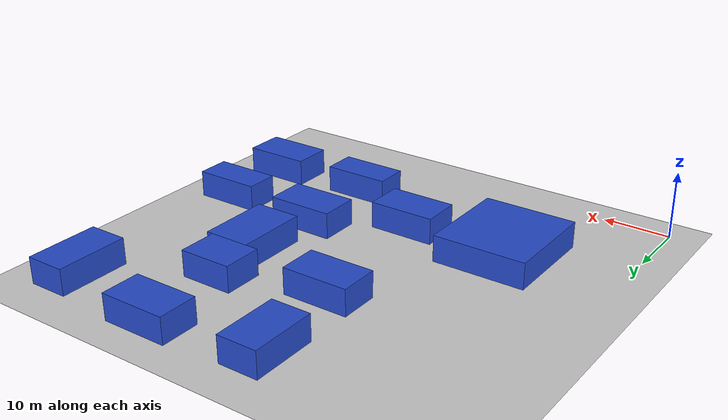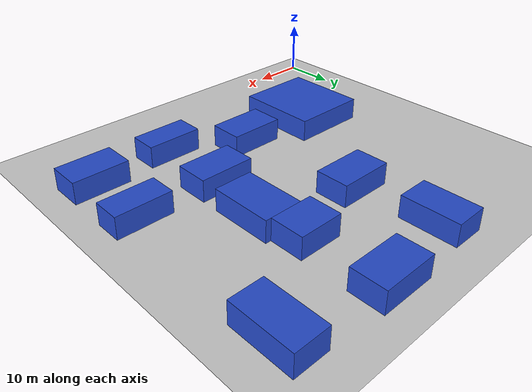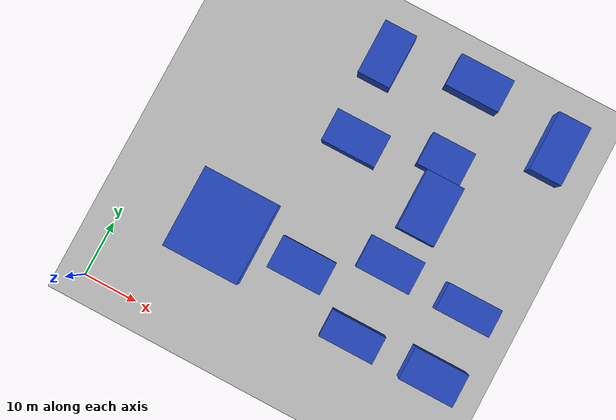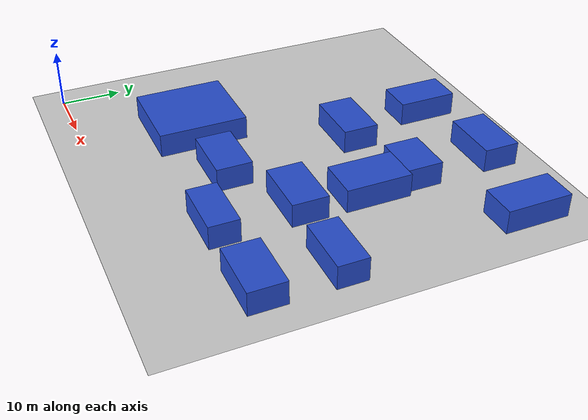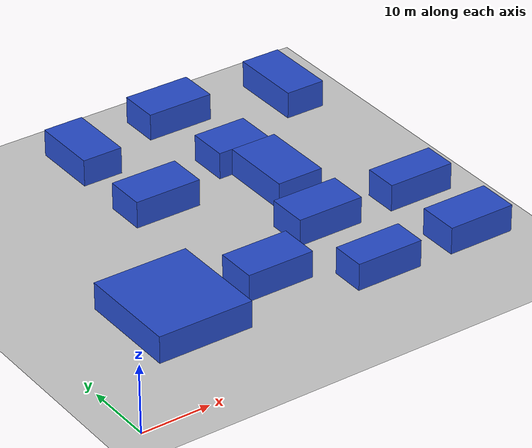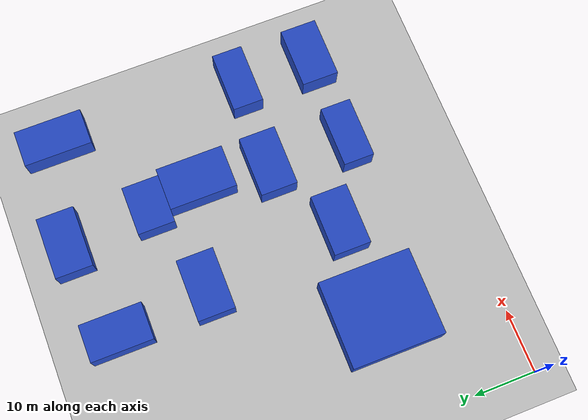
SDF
<?xml version="1.0" ?>
<sdf version="1.5">
  <world name="default">
    <!-- A global light source -->
    <include>
      <uri>model://sun</uri>
    </include>
    <!-- A ground plane -->
    <include>
      <uri>model://ground_plane</uri>
    </include>

    <physics name='default_physics' default='0' type='ode'>
      <gravity>0 0 -9.8066</gravity>
      <ode>
        <solver>
          <type>quick</type>
          <iters>10</iters>
          <sor>1.3</sor>
          <use_dynamic_moi_rescaling>0</use_dynamic_moi_rescaling>
        </solver>
        <constraints>
          <cfm>0</cfm>
          <erp>0.2</erp>
          <contact_max_correcting_vel>100</contact_max_correcting_vel>
          <contact_surface_layer>0.001</contact_surface_layer>
        </constraints>
      </ode>
      <max_step_size>0.004</max_step_size>
      <real_time_factor>1</real_time_factor>
      <real_time_update_rate>250</real_time_update_rate>
      <magnetic_field>6.0e-6 2.3e-5 -4.2e-5</magnetic_field>
    </physics>

    <spherical_coordinates>
      <surface_model>EARTH_WGS84</surface_model>
      <latitude_deg>40.769052</latitude_deg>
      <longitude_deg>-111.848071</longitude_deg>
      <elevation>1940</elevation>
    </spherical_coordinates>
    <!-- Boxes -->
    <model name='b0'>
     <static>1</static>
      <pose frame=''>17.0 18.5 2.0 0 -0 0</pose>
      <link name='link'>
        <inertial>
          <mass>1</mass>
          <inertia>
            <ixx>0.166667</ixx>
            <ixy>0</ixy>
            <ixz>0</ixz>
            <iyy>0.166667</iyy>
            <iyz>0</iyz>
            <izz>0.166667</izz>
          </inertia>
        </inertial>
        <collision name='collision'>
          <geometry>
            <box>
              <size>14 15 4</size>
            </box>
          </geometry>
          <max_contacts>10</max_contacts>
          <surface>
            <contact>
              <ode/>
            </contact>
            <bounce/>
            <friction>
              <torsional>
                <ode/>
              </torsional>
              <ode/>
            </friction>
          </surface>
        </collision>
        <visual name='visual'>
          <geometry>
            <box>
              <size>14 15 4</size>
            </box>
          </geometry>
          <material>
            <script>
              <name>Gazebo/Blue</name>
              <uri>file://media/materials/scripts/gazebo.material</uri>
            </script>
          </material>
        </visual>
        <self_collide>0</self_collide>
        <kinematic>0</kinematic>
        <gravity>0</gravity>
      </link>
    </model>

    <model name='b1'>
     <static>1</static>
      <pose frame=''>32.0 19.0 2.0 0 -0 0</pose>
      <link name='link'>
        <inertial>
          <mass>1</mass>
          <inertia>
            <ixx>0.166667</ixx>
            <ixy>0</ixy>
            <ixz>0</ixz>
            <iyy>0.166667</iyy>
            <iyz>0</iyz>
            <izz>0.166667</izz>
          </inertia>
        </inertial>
        <collision name='collision'>
          <geometry>
            <box>
              <size>10 6 4</size>
            </box>
          </geometry>
          <max_contacts>10</max_contacts>
          <surface>
            <contact>
              <ode/>
            </contact>
            <bounce/>
            <friction>
              <torsional>
                <ode/>
              </torsional>
              <ode/>
            </friction>
          </surface>
        </collision>
        <visual name='visual'>
          <geometry>
            <box>
              <size>10 6 4</size>
            </box>
          </geometry>
          <material>
            <script>
              <name>Gazebo/Blue</name>
              <uri>file://media/materials/scripts/gazebo.material</uri>
            </script>
          </material>
        </visual>
        <self_collide>0</self_collide>
        <kinematic>0</kinematic>
        <gravity>0</gravity>
      </link>
    </model>

    <model name='b2'>
     <static>1</static>
      <pose frame=''>30.0 42.0 2.0 0 -0 0</pose>
      <link name='link'>
        <inertial>
          <mass>1</mass>
          <inertia>
            <ixx>0.166667</ixx>
            <ixy>0</ixy>
            <ixz>0</ixz>
            <iyy>0.166667</iyy>
            <iyz>0</iyz>
            <izz>0.166667</izz>
          </inertia>
        </inertial>
        <collision name='collision'>
          <geometry>
            <box>
              <size>10 6 4</size>
            </box>
          </geometry>
          <max_contacts>10</max_contacts>
          <surface>
            <contact>
              <ode/>
            </contact>
            <bounce/>
            <friction>
              <torsional>
                <ode/>
              </torsional>
              <ode/>
            </friction>
          </surface>
        </collision>
        <visual name='visual'>
          <geometry>
            <box>
              <size>10 6 4</size>
            </box>
          </geometry>
          <material>
            <script>
              <name>Gazebo/Blue</name>
              <uri>file://media/materials/scripts/gazebo.material</uri>
            </script>
          </material>
        </visual>
        <self_collide>0</self_collide>
        <kinematic>0</kinematic>
        <gravity>0</gravity>
      </link>
    </model>

    <model name='b3'>
     <static>1</static>
      <pose frame=''>28.0 57.0 2.0 0 -0 0</pose>
      <link name='link'>
        <inertial>
          <mass>1</mass>
          <inertia>
            <ixx>0.166667</ixx>
            <ixy>0</ixy>
            <ixz>0</ixz>
            <iyy>0.166667</iyy>
            <iyz>0</iyz>
            <izz>0.166667</izz>
          </inertia>
        </inertial>
        <collision name='collision'>
          <geometry>
            <box>
              <size>6 10 4</size>
            </box>
          </geometry>
          <max_contacts>10</max_contacts>
          <surface>
            <contact>
              <ode/>
            </contact>
            <bounce/>
            <friction>
              <torsional>
                <ode/>
              </torsional>
              <ode/>
            </friction>
          </surface>
        </collision>
        <visual name='visual'>
          <geometry>
            <box>
              <size>6 10 4</size>
            </box>
          </geometry>
          <material>
            <script>
              <name>Gazebo/Blue</name>
              <uri>file://media/materials/scripts/gazebo.material</uri>
            </script>
          </material>
        </visual>
        <self_collide>0</self_collide>
        <kinematic>0</kinematic>
        <gravity>0</gravity>
      </link>
    </model>

    <model name='b4'>
     <static>1</static>
      <pose frame=''>45.0 12.5 2.0 0 -0 0</pose>
      <link name='link'>
        <inertial>
          <mass>1</mass>
          <inertia>
            <ixx>0.166667</ixx>
            <ixy>0</ixy>
            <ixz>0</ixz>
            <iyy>0.166667</iyy>
            <iyz>0</iyz>
            <izz>0.166667</izz>
          </inertia>
        </inertial>
        <collision name='collision'>
          <geometry>
            <box>
              <size>10 5 4</size>
            </box>
          </geometry>
          <max_contacts>10</max_contacts>
          <surface>
            <contact>
              <ode/>
            </contact>
            <bounce/>
            <friction>
              <torsional>
                <ode/>
              </torsional>
              <ode/>
            </friction>
          </surface>
        </collision>
        <visual name='visual'>
          <geometry>
            <box>
              <size>10 5 4</size>
            </box>
          </geometry>
          <material>
            <script>
              <name>Gazebo/Blue</name>
              <uri>file://media/materials/scripts/gazebo.material</uri>
            </script>
          </material>
        </visual>
        <self_collide>0</self_collide>
        <kinematic>0</kinematic>
        <gravity>0</gravity>
      </link>
    </model>

    <model name='b5'>
     <static>1</static>
      <pose frame=''>45.0 26.0 2.0 0 -0 0</pose>
      <link name='link'>
        <inertial>
          <mass>1</mass>
          <inertia>
            <ixx>0.166667</ixx>
            <ixy>0</ixy>
            <ixz>0</ixz>
            <iyy>0.166667</iyy>
            <iyz>0</iyz>
            <izz>0.166667</izz>
          </inertia>
        </inertial>
        <collision name='collision'>
          <geometry>
            <box>
              <size>10 6 4</size>
            </box>
          </geometry>
          <max_contacts>10</max_contacts>
          <surface>
            <contact>
              <ode/>
            </contact>
            <bounce/>
            <friction>
              <torsional>
                <ode/>
              </torsional>
              <ode/>
            </friction>
          </surface>
        </collision>
        <visual name='visual'>
          <geometry>
            <box>
              <size>10 6 4</size>
            </box>
          </geometry>
          <material>
            <script>
              <name>Gazebo/Blue</name>
              <uri>file://media/materials/scripts/gazebo.material</uri>
            </script>
          </material>
        </visual>
        <self_collide>0</self_collide>
        <kinematic>0</kinematic>
        <gravity>0</gravity>
      </link>
    </model>

    <model name='b6'>
     <static>1</static>
      <pose frame=''>46.5 37.5 2.0 0 -0 0</pose>
      <link name='link'>
        <inertial>
          <mass>1</mass>
          <inertia>
            <ixx>0.166667</ixx>
            <ixy>0</ixy>
            <ixz>0</ixz>
            <iyy>0.166667</iyy>
            <iyz>0</iyz>
            <izz>0.166667</izz>
          </inertia>
        </inertial>
        <collision name='collision'>
          <geometry>
            <box>
              <size>7 11 4</size>
            </box>
          </geometry>
          <max_contacts>10</max_contacts>
          <surface>
            <contact>
              <ode/>
            </contact>
            <bounce/>
            <friction>
              <torsional>
                <ode/>
              </torsional>
              <ode/>
            </friction>
          </surface>
        </collision>
        <visual name='visual'>
          <geometry>
            <box>
              <size>7 11 4</size>
            </box>
          </geometry>
          <material>
            <script>
              <name>Gazebo/Blue</name>
              <uri>file://media/materials/scripts/gazebo.material</uri>
            </script>
          </material>
        </visual>
        <self_collide>0</self_collide>
        <kinematic>0</kinematic>
        <gravity>0</gravity>
      </link>
    </model>

    <model name='b7'>
     <static>1</static>
      <pose frame=''>45.0 46.0 2.0 0 -0 0</pose>
      <link name='link'>
        <inertial>
          <mass>1</mass>
          <inertia>
            <ixx>0.166667</ixx>
            <ixy>0</ixy>
            <ixz>0</ixz>
            <iyy>0.166667</iyy>
            <iyz>0</iyz>
            <izz>0.166667</izz>
          </inertia>
        </inertial>
        <collision name='collision'>
          <geometry>
            <box>
              <size>8 6 4</size>
            </box>
          </geometry>
          <max_contacts>10</max_contacts>
          <surface>
            <contact>
              <ode/>
            </contact>
            <bounce/>
            <friction>
              <torsional>
                <ode/>
              </torsional>
              <ode/>
            </friction>
          </surface>
        </collision>
        <visual name='visual'>
          <geometry>
            <box>
              <size>8 6 4</size>
            </box>
          </geometry>
          <material>
            <script>
              <name>Gazebo/Blue</name>
              <uri>file://media/materials/scripts/gazebo.material</uri>
            </script>
          </material>
        </visual>
        <self_collide>0</self_collide>
        <kinematic>0</kinematic>
        <gravity>0</gravity>
      </link>
    </model>

    <model name='b8'>
     <static>1</static>
      <pose frame=''>44.0 60.0 2.0 0 -0 0</pose>
      <link name='link'>
        <inertial>
          <mass>1</mass>
          <inertia>
            <ixx>0.166667</ixx>
            <ixy>0</ixy>
            <ixz>0</ixz>
            <iyy>0.166667</iyy>
            <iyz>0</iyz>
            <izz>0.166667</izz>
          </inertia>
        </inertial>
        <collision name='collision'>
          <geometry>
            <box>
              <size>10 6 4</size>
            </box>
          </geometry>
          <max_contacts>10</max_contacts>
          <surface>
            <contact>
              <ode/>
            </contact>
            <bounce/>
            <friction>
              <torsional>
                <ode/>
              </torsional>
              <ode/>
            </friction>
          </surface>
        </collision>
        <visual name='visual'>
          <geometry>
            <box>
              <size>10 6 4</size>
            </box>
          </geometry>
          <material>
            <script>
              <name>Gazebo/Blue</name>
              <uri>file://media/materials/scripts/gazebo.material</uri>
            </script>
          </material>
        </visual>
        <self_collide>0</self_collide>
        <kinematic>0</kinematic>
        <gravity>0</gravity>
      </link>
    </model>

    <model name='b9'>
     <static>1</static>
      <pose frame=''>60.0 13.0 2.0 0 -0 0</pose>
      <link name='link'>
        <inertial>
          <mass>1</mass>
          <inertia>
            <ixx>0.166667</ixx>
            <ixy>0</ixy>
            <ixz>0</ixz>
            <iyy>0.166667</iyy>
            <iyz>0</iyz>
            <izz>0.166667</izz>
          </inertia>
        </inertial>
        <collision name='collision'>
          <geometry>
            <box>
              <size>10 6 4</size>
            </box>
          </geometry>
          <max_contacts>10</max_contacts>
          <surface>
            <contact>
              <ode/>
            </contact>
            <bounce/>
            <friction>
              <torsional>
                <ode/>
              </torsional>
              <ode/>
            </friction>
          </surface>
        </collision>
        <visual name='visual'>
          <geometry>
            <box>
              <size>10 6 4</size>
            </box>
          </geometry>
          <material>
            <script>
              <name>Gazebo/Blue</name>
              <uri>file://media/materials/scripts/gazebo.material</uri>
            </script>
          </material>
        </visual>
        <self_collide>0</self_collide>
        <kinematic>0</kinematic>
        <gravity>0</gravity>
      </link>
    </model>

    <model name='b10'>
     <static>1</static>
      <pose frame=''>60.0 25.5 2.0 0 -0 0</pose>
      <link name='link'>
        <inertial>
          <mass>1</mass>
          <inertia>
            <ixx>0.166667</ixx>
            <ixy>0</ixy>
            <ixz>0</ixz>
            <iyy>0.166667</iyy>
            <iyz>0</iyz>
            <izz>0.166667</izz>
          </inertia>
        </inertial>
        <collision name='collision'>
          <geometry>
            <box>
              <size>10 5 4</size>
            </box>
          </geometry>
          <max_contacts>10</max_contacts>
          <surface>
            <contact>
              <ode/>
            </contact>
            <bounce/>
            <friction>
              <torsional>
                <ode/>
              </torsional>
              <ode/>
            </friction>
          </surface>
        </collision>
        <visual name='visual'>
          <geometry>
            <box>
              <size>10 5 4</size>
            </box>
          </geometry>
          <material>
            <script>
              <name>Gazebo/Blue</name>
              <uri>file://media/materials/scripts/gazebo.material</uri>
            </script>
          </material>
        </visual>
        <self_collide>0</self_collide>
        <kinematic>0</kinematic>
        <gravity>0</gravity>
      </link>
    </model>

    <model name='b11'>
     <static>1</static>
      <pose frame=''>61.0 56.5 2.0 0 -0 0</pose>
      <link name='link'>
        <inertial>
          <mass>1</mass>
          <inertia>
            <ixx>0.166667</ixx>
            <ixy>0</ixy>
            <ixz>0</ixz>
            <iyy>0.166667</iyy>
            <iyz>0</iyz>
            <izz>0.166667</izz>
          </inertia>
        </inertial>
        <collision name='collision'>
          <geometry>
            <box>
              <size>6 11 4</size>
            </box>
          </geometry>
          <max_contacts>10</max_contacts>
          <surface>
            <contact>
              <ode/>
            </contact>
            <bounce/>
            <friction>
              <torsional>
                <ode/>
              </torsional>
              <ode/>
            </friction>
          </surface>
        </collision>
        <visual name='visual'>
          <geometry>
            <box>
              <size>6 11 4</size>
            </box>
          </geometry>
          <material>
            <script>
              <name>Gazebo/Blue</name>
              <uri>file://media/materials/scripts/gazebo.material</uri>
            </script>
          </material>
        </visual>
        <self_collide>0</self_collide>
        <kinematic>0</kinematic>
        <gravity>0</gravity>
      </link>
    </model>

  </world>
</sdf>
